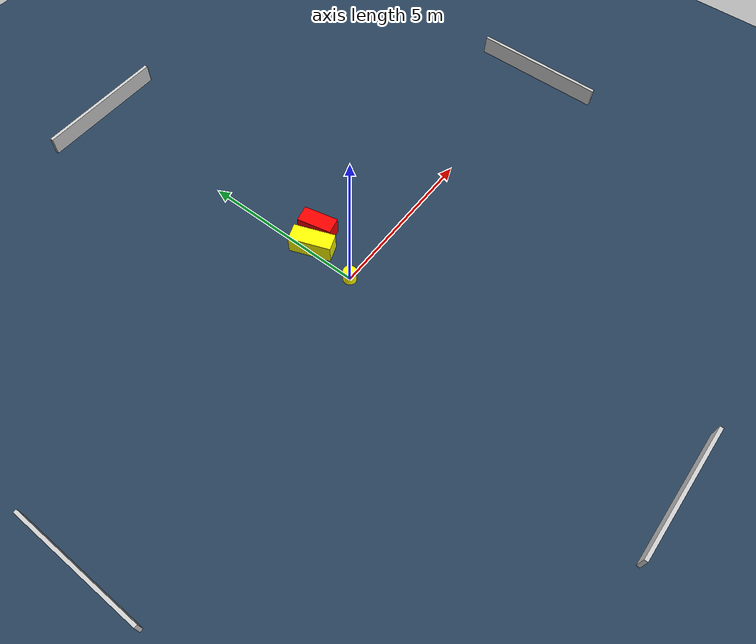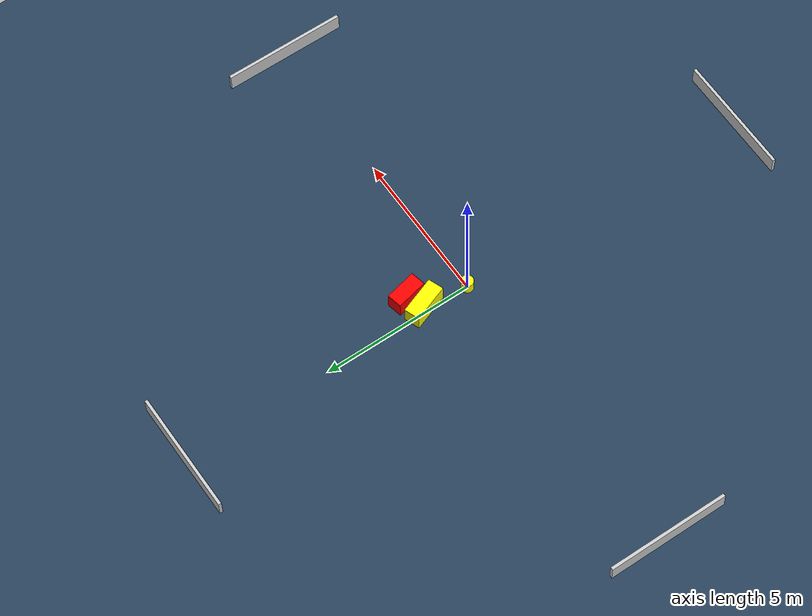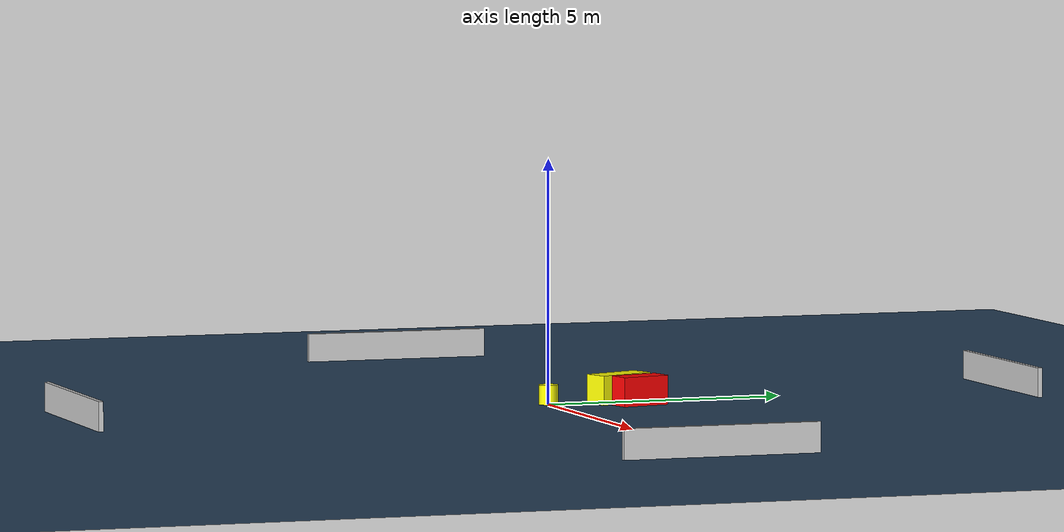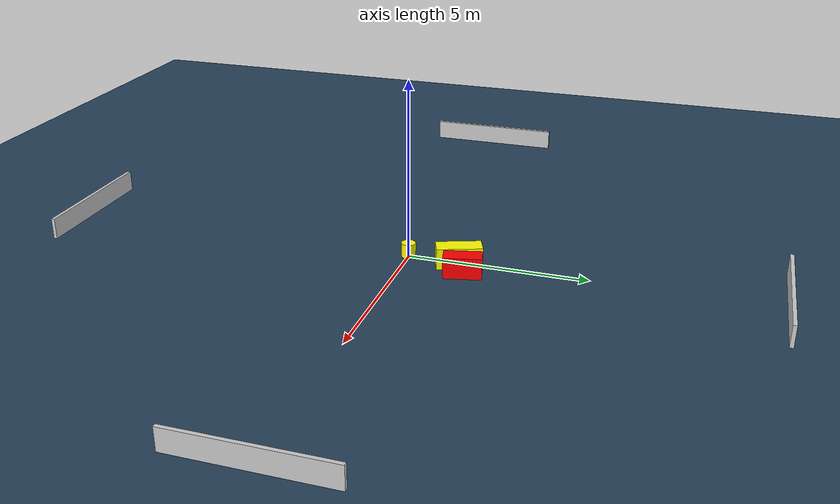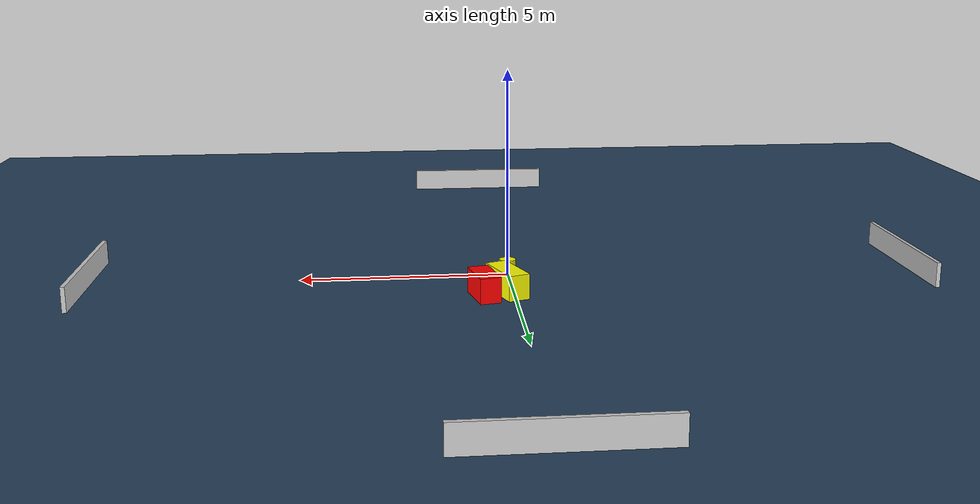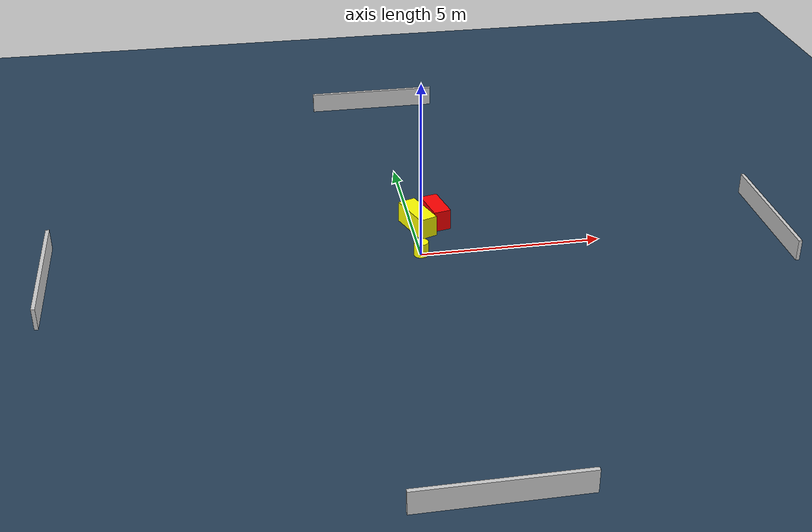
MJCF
<?xml version="1.0" ?>
<mujoco model="generated_environment">
  <option timestep="0.01" integrator="RK4" cone="elliptic"/>
  <default>
    <geom density="1"/>
  </default>
  <asset>
    <texture builtin="gradient" height="3072" name="skybox" rgb1="0.3 0.5 0.7" rgb2="0 0 0" type="skybox" width="512"/>
    <texture builtin="checker" height="300" name="groundplane" rgb1="0.2 0.3 0.4" rgb2="0.1 0.2 0.3" type="2d" width="300"/>
    <material name="groundplane" reflectance="0.2" texrepeat="5 5" texture="groundplane"/>
  </asset>
  <worldbody>
    <light dir="0 0 -1" directional="true" pos="0 0 1.5"/>
    <geom condim="3" friction="0.5 0.005 0.001" material="groundplane" name="floor" pos="0 0 0" size="0 0 0.05" type="plane"/>
    <body name="walls">
      <geom name="wall_1" condim="4" pos="-10.0 0.0 0.3" rgba="0.800000011920929 0.800000011920929 0.800000011920929 1.0" size="0.05 2.0 0.3" type="box"/>
      <geom name="wall_2" condim="4" pos="10.0 0.0 0.3" rgba="0.800000011920929 0.800000011920929 0.800000011920929 1.0" size="0.05 2.0 0.3" type="box"/>
      <geom name="wall_3" condim="4" pos="0.0 -10.0 0.3" rgba="0.800000011920929 0.800000011920929 0.800000011920929 1.0" size="2.0 0.05 0.3" type="box"/>
      <geom name="wall_4" condim="4" pos="0.0 10.0 0.3" rgba="0.800000011920929 0.800000011920929 0.800000011920929 1.0" size="2.0 0.05 0.3" type="box"/>
    </body>
    <body name="robot">
      <joint name="joint_x" type="slide" pos="0 0 0" axis="1 0 0"/>
      <joint name="joint_y" type="slide" pos="0 0 0" axis="0 1 0"/>
      <geom name="robot" type="cylinder" pos="0.0 0.0 0.2" size="0.2 0.2 0.0" mass="5.0" friction="1.0 0.005 0.0001" condim="4" rgba="1.0 1.0 0.0 1.0"/>
    </body>
    <body name="obstacle_1_movable">
      <geom name="obstacle_1_movable" condim="4" pos="0.1429790838591541 1.4717017370722663 0.3" euler="0 0 110.43461585220632" friction="0.0 0.005 0.001" rgba="1.0 1.0 0.0 1.0" size="0.6254918905764997 0.25881711588884004 0.3" type="box" mass="0.1"/>
      <joint type="free"/>
    </body>
    <body name="obstacle_2_static">
      <geom name="obstacle_2_static" condim="4" pos="0.7029749915456722 1.725330637312182 0.3" euler="0 0 12.451124701741648" friction="0.0 0.005 0.001" rgba="1.0 0.0 0.0 1.0" size="0.24844293574665793 0.5209343108145887 0.3" type="box"/>
    </body>
  </worldbody>
  <actuator>
    <motor name="actuator_x" joint="joint_x" gear="1" ctrlrange="-1 1"/>
    <motor name="actuator_y" joint="joint_y" gear="1" ctrlrange="-1 1"/>
  </actuator>
</mujoco>
